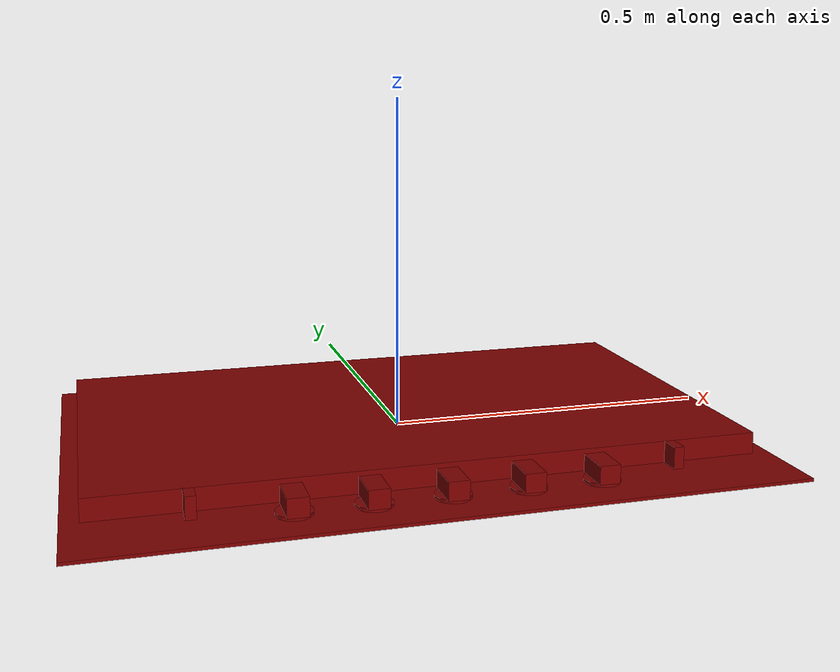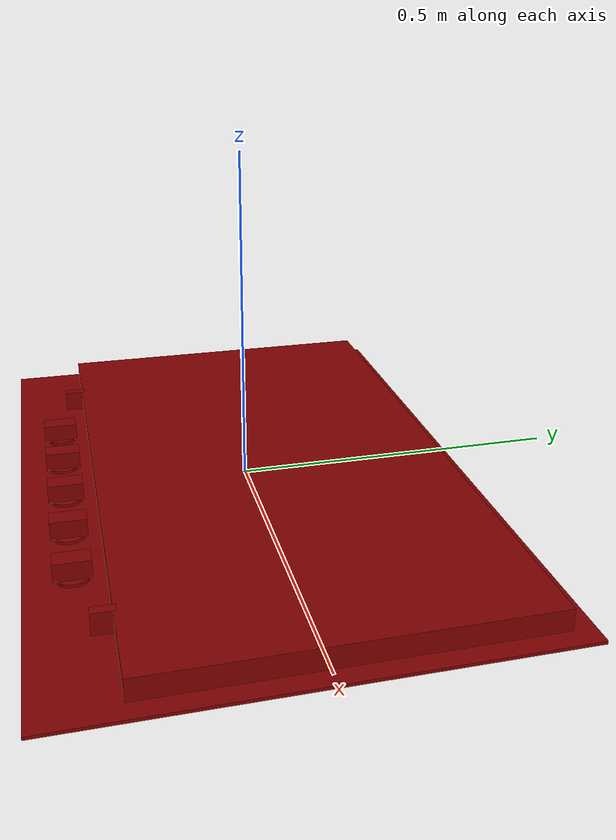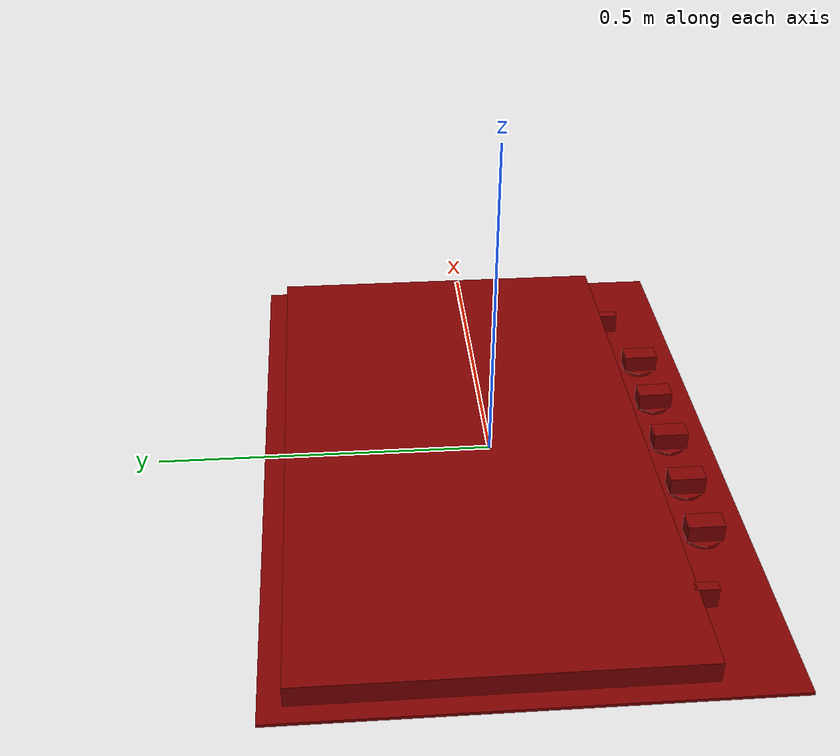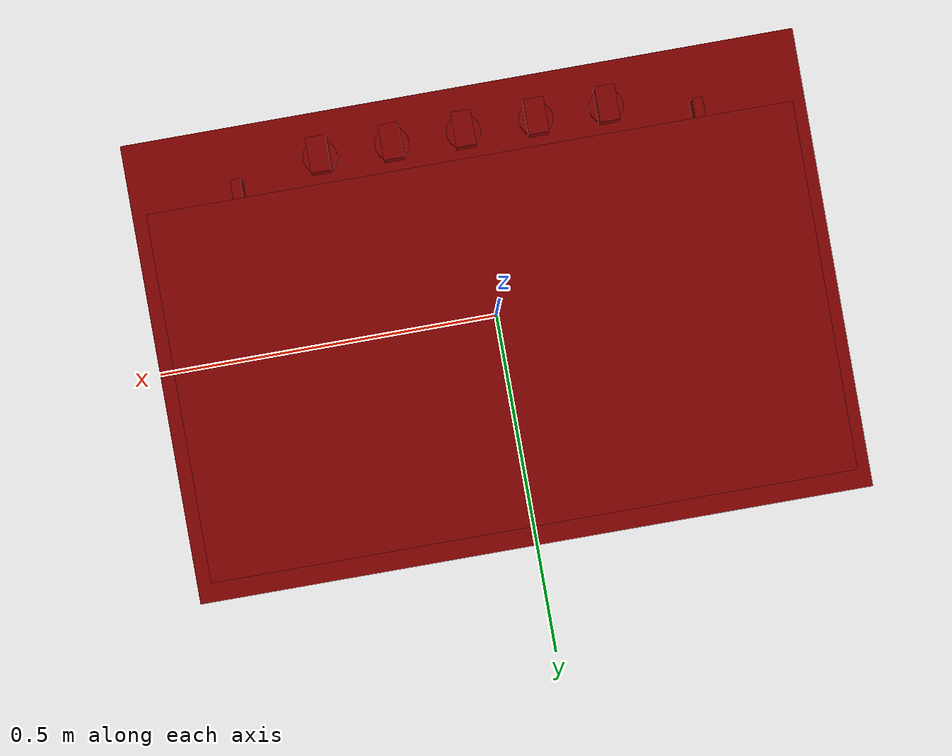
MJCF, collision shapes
<?xml version='1.0' encoding='UTF-8'?>
<mujoco model="model">
  <option timestep="0.002" gravity="0.0 0.0 -9.81"/>
  <compiler angle="radian"/>
  <asset>
    <mesh file="visuals/knob_center.obj" name="knob_center_vis"/>
    <mesh file="visuals/knob_front_left.obj" name="knob_front_left_vis"/>
    <mesh file="visuals/knob_front_right.obj" name="knob_front_right_vis"/>
    <mesh file="visuals/knob_rear_left.obj" name="knob_rear_left_vis"/>
    <mesh file="visuals/knob_rear_right.obj" name="knob_rear_right_vis"/>
    <mesh file="visuals/Body001.obj" name="Body001_vis"/>
    <texture file="visuals/T_BC001.png" name="Body001_material" type="2d"/>
    <material name="Body001_material" rgba="1 1 1 1.0" texture="Body001_material" shininess="0.1" specular="4"/>
    <texture file="visuals/T_BC001.png" name="knob_center_material" type="2d"/>
    <material name="knob_center_material" rgba="1 1 1 1.0" texture="knob_center_material" shininess="0.141421377658844" specular="0.3103448502657381"/>
    <texture file="visuals/T_BC001.png" name="knob_front_left_material" type="2d"/>
    <material name="knob_front_left_material" rgba="1 1 1 1.0" texture="knob_front_left_material" shininess="0.141421377658844" specular="0.3103448502657381"/>
    <texture file="visuals/T_BC001.png" name="knob_front_right_material" type="2d"/>
    <material name="knob_front_right_material" rgba="1 1 1 1.0" texture="knob_front_right_material" shininess="0.141421377658844" specular="0.3103448502657381"/>
    <texture file="visuals/T_BC001.png" name="knob_rear_left_material" type="2d"/>
    <material name="knob_rear_left_material" rgba="1 1 1 1.0" texture="knob_rear_left_material" shininess="0.141421377658844" specular="0.3103448502657381"/>
    <texture file="visuals/T_BC001.png" name="knob_rear_right_material" type="2d"/>
    <material name="knob_rear_right_material" rgba="1 1 1 1.0" texture="knob_rear_right_material" shininess="0.141421377658844" specular="0.3103448502657381"/>
  </asset>
  <default>
    <default class="visual">
      <geom conaffinity="0" contype="0" group="1" type="mesh"/>
    </default>
    <default class="collision">
      <geom group="0" rgba="0.5 0 0 0.5"/>
    </default>
    <default class="spawn">
      <geom group="0" rgba="1 1 1 0.5" contype="0" conaffinity="0"/>
      <site group="0" rgba="1 1 1 0.5"/>
    </default>
    <default class="region">
      <geom group="1" conaffinity="0" contype="0" rgba="0 1 0 0"/>
    </default>
  </default>
  <worldbody>
    <body>
      <body name="object">
        <geom mesh="Body001_vis" type="mesh" solimp="0.998 0.998 0.001" solref="0.001 1" friction="0.95 0.3 0.1" class="visual" material="Body001_material"/>
        <geom class="collision" type="box" pos="0.00000507 0.00002325 -0.01622455" size="0.5037747621536255 0.34315985441207886 0.0023943993728607893" quat="1.0 0.0 0.0 0.0"/>
        <geom class="collision" type="box" pos="-0.00066295 0.03935498 0.00272973" size="0.4771367013454437 0.27203309535980225 0.015992630273103714" quat="1.0 0.0 0.0 0.0"/>
        <geom class="collision" type="box" pos="-0.34202588 -0.24491544 0.00272973" size="0.007446399424225092 0.016593515872955322 0.015992630273103714" quat="1.0 0.0 0.0 0.0"/>
        <geom class="collision" type="box" pos="0.34063055 -0.24491544 0.00272973" size="0.007446399424225092 0.016593515872955322 0.015992630273103714" quat="1.0 0.0 0.0 0.0"/>
        <body name="knob_center">
          <joint axis="0.0 0.0 1.0" pos="0.00075761 -0.27646983 -0.00278144" limited="true" name="knob_center_joint" range="0.0 3.141592653589793" type="hinge" damping="0.2" armature="0.01" frictionloss="1"/>
          <geom mesh="knob_center_vis" type="mesh" solimp="0.998 0.998 0.001" solref="0.001 1" friction="0.95 0.3 0.1" class="visual" material="knob_center_material"/>
          <geom class="collision" type="box" pos="0.00067418 -0.27661869 0.00524147" size="0.014874361455440521 0.026102233678102493 0.013480888679623604" quat="1.0 0.0 0.0 0.0" name="knob_center_main" friction="100 0.5 0.01"/>
          <geom class="collision" type="cylinder" pos="0.00096464 -0.27648753 -0.01021900" size="0.02549481950700283 0.002379579236730933" quat="1.0 0.0 0.0 0.0" friction="100 0.5 0.01"/>
        </body>
        <body name="knob_front_left">
          <joint axis="0.0 0.0 1.0" pos="-0.21243743 -0.27646983 0.00218252" limited="true" name="knob_front_left_joint" range="0.0 3.141592653589793" type="hinge" damping="0.2" armature="0.01" frictionloss="1"/>
          <geom mesh="knob_front_left_vis" type="mesh" solimp="0.998 0.998 0.001" solref="0.001 1" friction="0.95 0.3 0.1" class="visual" material="knob_front_left_material"/>
          <geom class="collision" type="box" pos="-0.21199395 -0.27661869 0.00524147" size="0.014874360524117947 0.026102233678102493 0.013480888679623604" quat="1.0 0.0 0.0 0.0" name="knob_front_left_main" friction="100 0.5 0.01"/>
          <geom class="collision" type="cylinder" pos="-0.21255463 -0.27648753 -0.01021900" size="0.02549481950700283 0.002379579236730933" quat="1.0 0.0 0.0 0.0" friction="100 0.5 0.01"/>
        </body>
        <body name="knob_front_right">
          <joint axis="0.0 0.0 1.0" pos="0.21546326 -0.27646983 0.00218252" limited="true" name="knob_front_right_joint" range="0.0 3.141592653589793" type="hinge" damping="0.2" armature="0.01" frictionloss="1"/>
          <geom mesh="knob_front_right_vis" type="mesh" solimp="0.998 0.998 0.001" solref="0.001 1" friction="0.95 0.3 0.1" class="visual" material="knob_front_right_material"/>
          <geom class="collision" type="box" pos="0.21526844 -0.27661869 0.00544147" size="0.014874360524117947 0.026102233678102493 0.01328088715672493" quat="1.0 0.0 0.0 0.0" name="knob_front_right_main" friction="100 0.5 0.01"/>
          <geom class="collision" type="cylinder" pos="0.21547901 -0.27648753 -0.01021900" size="0.02549481764435768 0.002379579236730933" quat="1.0 0.0 0.0 0.0" friction="100 0.5 0.01"/>
        </body>
        <body name="knob_rear_left">
          <joint axis="0.0 0.0 1.0" pos="-0.10701134 -0.27646983 0.00218252" limited="true" name="knob_rear_left_joint" range="0.0 3.141592653589793" type="hinge" damping="0.2" armature="0.01" frictionloss="1"/>
          <geom mesh="knob_rear_left_vis" type="mesh" solimp="0.998 0.998 0.001" solref="0.001 1" friction="0.95 0.3 0.1" class="visual" material="knob_rear_left_material"/>
          <geom class="collision" type="box" pos="-0.10674547 -0.27661869 0.00524147" size="0.01487436331808567 0.026102233678102493 0.013480888679623604" quat="1.0 0.0 0.0 0.0" name="knob_rear_left_main" friction="100 0.5 0.01"/>
          <geom class="collision" type="cylinder" pos="-0.10709531 -0.27648753 -0.01021900" size="0.02549481950700283 0.002379579236730933" quat="1.0 0.0 0.0 0.0" friction="100 0.5 0.01"/>
        </body>
        <body name="knob_rear_right">
          <joint axis="0.0 0.0 1.0" pos="0.10765153 -0.27646983 0.00218252" limited="true" name="knob_rear_right_joint" range="0.0 3.141592653589793" type="hinge" damping="0.2" armature="0.01" frictionloss="1"/>
          <geom mesh="knob_rear_right_vis" type="mesh" solimp="0.998 0.998 0.001" solref="0.001 1" friction="0.95 0.3 0.1" class="visual" material="knob_rear_right_material"/>
          <geom class="collision" type="box" pos="0.10764588 -0.27661869 0.00524147" size="0.01487436331808567 0.026102233678102493 0.013480888679623604" quat="1.0 0.0 0.0 0.0" name="knob_rear_right_main" friction="100 0.5 0.01"/>
          <geom class="collision" type="cylinder" pos="0.10777196 -0.27648753 -0.01021900" size="0.02549481764435768 0.002379579236730933" quat="1.0 0.0 0.0 0.0" friction="100 0.5 0.01"/>
        </body>
        <site type="cylinder" rgba="0.3 0.4 1 0.5" size="0.04798935726284981 0.005398983135819435" pos="-0.32848684 0.16873083 0.00916122" name="burner_on_rear_left"/>
        <site type="cylinder" rgba="0.3 0.4 1 0.5" size="0.06387793272733688 0.006224197335541248" pos="-0.34205759 -0.12123667 0.00878625" name="burner_on_front_left"/>
        <site type="cylinder" rgba="0.3 0.4 1 0.5" size="0.08508281409740448 0.006080179009586573" pos="0.00075783 0.00697827 0.00894887" name="burner_on_center"/>
        <site type="cylinder" rgba="0.3 0.4 1 0.5" size="0.0483204647898674 0.006255870219320059" pos="0.32884099 0.16873272 0.00894880" name="burner_on_rear_right"/>
        <site type="cylinder" rgba="0.3 0.4 1 0.5" size="0.033213403075933456 0.0054710628464818" pos="0.34055238 -0.12134513 0.00908137" name="burner_on_front_right"/>
        <site type="cylinder" rgba="0.5 0 0 0" size="0.047458648681640625 4.999999873689376e-05" pos="-0.32848684 0.16873083 0.01867236" name="burner_rear_left_place_site"/>
        <site type="cylinder" rgba="0.5 0 0 0" size="0.06139972433447838 4.999999873689376e-05" pos="-0.34205759 -0.12123667 0.01867236" name="burner_front_left_place_site"/>
        <site type="cylinder" rgba="0.5 0 0 0" size="0.08221416175365448 4.999999873689376e-05" pos="0.00075783 0.00697827 0.01867236" name="burner_center_place_site"/>
        <site type="cylinder" rgba="0.5 0 0 0" size="0.04726271331310272 4.999999873689376e-05" pos="0.32884099 0.16873272 0.01867236" name="burner_rear_right_place_site"/>
        <site type="cylinder" rgba="0.5 0 0 0" size="0.032118458300828934 4.999999873689376e-05" pos="0.34055238 -0.12160791 0.01867236" name="burner_front_right_place_site"/>
        <geom class="region" name="reg_main" type="box" pos="4.999999999977245e-06 -1.4999999992104662e-08 -0.016224495" size="0.5047740500000001 0.34418226500000004 0.003394335"/>
      </body>
    </body>
  </worldbody>
  <actuator>
    <motor name="knob_center_joint_actuator" joint="knob_center_joint" gear="10"/>
    <motor name="knob_front_left_joint_actuator" joint="knob_front_left_joint" gear="10"/>
    <motor name="knob_front_right_joint_actuator" joint="knob_front_right_joint" gear="10"/>
    <motor name="knob_rear_left_joint_actuator" joint="knob_rear_left_joint" gear="10"/>
    <motor name="knob_rear_right_joint_actuator" joint="knob_rear_right_joint" gear="10"/>
  </actuator>
</mujoco>
